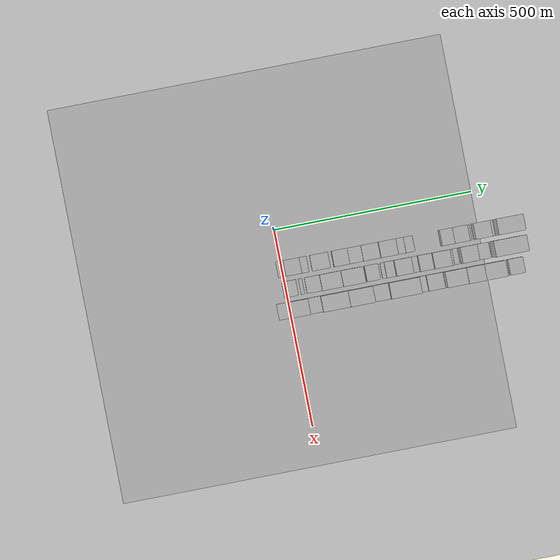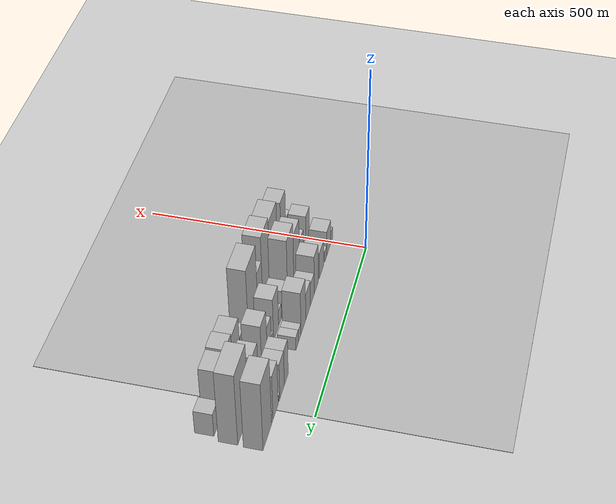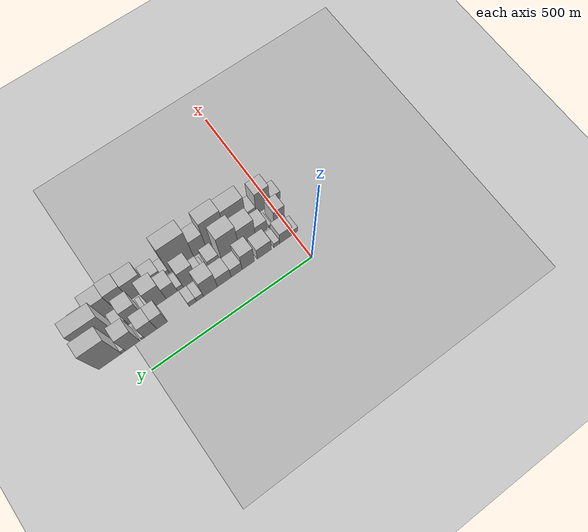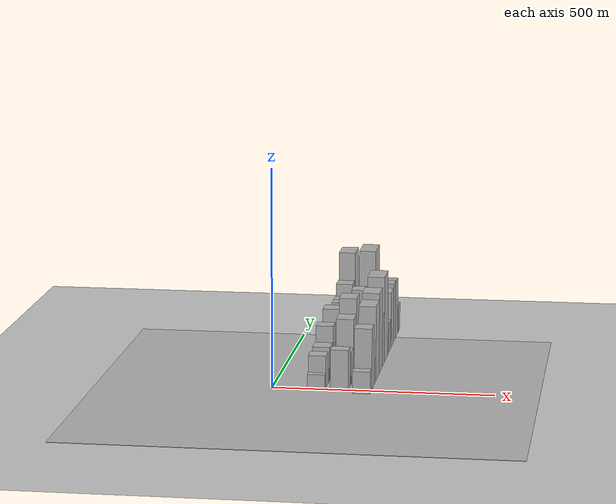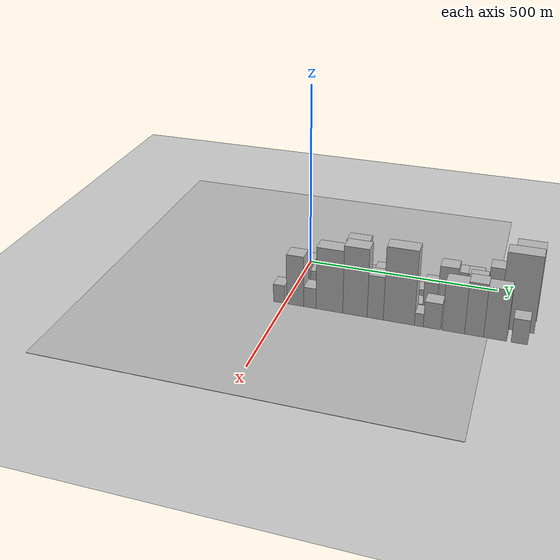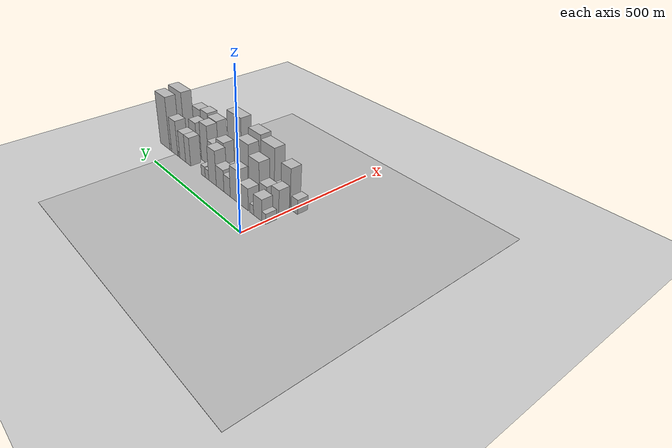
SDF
<sdf version="1.6">
 <world name="default">
  <include><name>ground_plane_1</name><uri>model://HANNAS_ground_plane</uri></include>
  <include>
   <name>ground_plane_2</name>
   <uri>model://HANNAS_ground_plane</uri>
   <pose>100 0 0  0 0 0</pose>
  </include>
  <model name="building_15">
   <static>1</static>
   <pose>100.0000 -2.6268 0 0.000000 0.000000 0.000000</pose>
   <link name="link">
    <pose>0 0 18.00 0 0 0</pose>
    <collision name="collision"><geometry><box><size>40.0000 19.1836 36.0000</size></box></geometry></collision>
    <visual name="visual">
     <cast_shadows>0</cast_shadows>
     <geometry><box><size>40.0000 19.1836 36.0000</size></box></geometry>
     <material>
      <script>
       <uri>model://HANNAS_wall/materials/scripts</uri>
       <uri>model://HANNAS_wall/materials/textures</uri>
       <name>vrc/HANNAS_wall</name>
      </script>
     </material>
    </visual>
   </link>
  </model>
  <model name="building_16">
   <static>1</static>
   <pose>100.0000 27.1155 0 0.000000 0.000000 0.000000</pose>
   <link name="link">
    <pose>0 0 37.50 0 0 0</pose>
    <collision name="collision"><geometry><box><size>40.0000 40.3009 75.0000</size></box></geometry></collision>
    <visual name="visual">
     <cast_shadows>0</cast_shadows>
     <geometry><box><size>40.0000 40.3009 75.0000</size></box></geometry>
     <material>
      <script>
       <uri>model://HANNAS_wall/materials/scripts</uri>
       <uri>model://HANNAS_wall/materials/textures</uri>
       <name>vrc/HANNAS_wall</name>
      </script>
     </material>
    </visual>
   </link>
  </model>
  <model name="building_17">
   <static>1</static>
   <pose>100.0000 56.4438 0 0.000000 0.000000 0.000000</pose>
   <link name="link">
    <pose>0 0 16.50 0 0 0</pose>
    <collision name="collision"><geometry><box><size>40.0000 18.3558 33.0000</size></box></geometry></collision>
    <visual name="visual">
     <cast_shadows>0</cast_shadows>
     <geometry><box><size>40.0000 18.3558 33.0000</size></box></geometry>
     <material>
      <script>
       <uri>model://HANNAS_wall/materials/scripts</uri>
       <uri>model://HANNAS_wall/materials/textures</uri>
       <name>vrc/HANNAS_wall</name>
      </script>
     </material>
    </visual>
   </link>
  </model>
  <model name="building_18">
   <static>1</static>
   <pose>100.0000 96.5650 0 0.000000 0.000000 0.000000</pose>
   <link name="link">
    <pose>0 0 39.00 0 0 0</pose>
    <collision name="collision"><geometry><box><size>40.0000 45.8865 78.0000</size></box></geometry></collision>
    <visual name="visual">
     <cast_shadows>0</cast_shadows>
     <geometry><box><size>40.0000 45.8865 78.0000</size></box></geometry>
     <material>
      <script>
       <uri>model://HANNAS_wall/materials/scripts</uri>
       <uri>model://HANNAS_wall/materials/textures</uri>
       <name>vrc/HANNAS_wall</name>
      </script>
     </material>
    </visual>
   </link>
  </model>
  <model name="building_19">
   <static>1</static>
   <pose>100.0000 148.1365 0 0.000000 0.000000 0.000000</pose>
   <link name="link">
    <pose>0 0 57.00 0 0 0</pose>
    <collision name="collision"><geometry><box><size>40.0000 39.2566 114.0000</size></box></geometry></collision>
    <visual name="visual">
     <cast_shadows>0</cast_shadows>
     <geometry><box><size>40.0000 39.2566 114.0000</size></box></geometry>
     <material>
      <script>
       <uri>model://HANNAS_wall/materials/scripts</uri>
       <uri>model://HANNAS_wall/materials/textures</uri>
       <name>vrc/HANNAS_wall</name>
      </script>
     </material>
    </visual>
   </link>
  </model>
  <model name="building_20">
   <static>1</static>
   <pose>100.0000 185.2685 0 0.000000 0.000000 0.000000</pose>
   <link name="link">
    <pose>0 0 33.00 0 0 0</pose>
    <collision name="collision"><geometry><box><size>40.0000 35.0073 66.0000</size></box></geometry></collision>
    <visual name="visual">
     <cast_shadows>0</cast_shadows>
     <geometry><box><size>40.0000 35.0073 66.0000</size></box></geometry>
     <material>
      <script>
       <uri>model://HANNAS_wall/materials/scripts</uri>
       <uri>model://HANNAS_wall/materials/textures</uri>
       <name>vrc/HANNAS_wall</name>
      </script>
     </material>
    </visual>
   </link>
  </model>
  <model name="building_21">
   <static>1</static>
   <pose>100.0000 224.4527 0 0.000000 0.000000 0.000000</pose>
   <link name="link">
    <pose>0 0 39.00 0 0 0</pose>
    <collision name="collision"><geometry><box><size>40.0000 43.3611 78.0000</size></box></geometry></collision>
    <visual name="visual">
     <cast_shadows>0</cast_shadows>
     <geometry><box><size>40.0000 43.3611 78.0000</size></box></geometry>
     <material>
      <script>
       <uri>model://HANNAS_wall/materials/scripts</uri>
       <uri>model://HANNAS_wall/materials/textures</uri>
       <name>vrc/HANNAS_wall</name>
      </script>
     </material>
    </visual>
   </link>
  </model>
  <model name="building_22">
   <static>1</static>
   <pose>100.0000 267.9557 0 0.000000 0.000000 0.000000</pose>
   <link name="link">
    <pose>0 0 63.00 0 0 0</pose>
    <collision name="collision"><geometry><box><size>40.0000 43.6451 126.0000</size></box></geometry></collision>
    <visual name="visual">
     <cast_shadows>0</cast_shadows>
     <geometry><box><size>40.0000 43.6451 126.0000</size></box></geometry>
     <material>
      <script>
       <uri>model://HANNAS_wall/materials/scripts</uri>
       <uri>model://HANNAS_wall/materials/textures</uri>
       <name>vrc/HANNAS_wall</name>
      </script>
     </material>
    </visual>
   </link>
  </model>
  <model name="building_23">
   <static>1</static>
   <pose>100.0000 300.5000 0 0.000000 0.000000 0.000000</pose>
   <link name="link">
    <pose>0 0 18.00 0 0 0</pose>
    <collision name="collision"><geometry><box><size>40.0000 21.4434 36.0000</size></box></geometry></collision>
    <visual name="visual">
     <cast_shadows>0</cast_shadows>
     <geometry><box><size>40.0000 21.4434 36.0000</size></box></geometry>
     <material>
      <script>
       <uri>model://HANNAS_wall/materials/scripts</uri>
       <uri>model://HANNAS_wall/materials/textures</uri>
       <name>vrc/HANNAS_wall</name>
      </script>
     </material>
    </visual>
   </link>
  </model>
  <model name="building_24">
   <static>1</static>
   <pose>100.0000 322.6901 0 0.000000 0.000000 0.000000</pose>
   <link name="link">
    <pose>0 0 19.50 0 0 0</pose>
    <collision name="collision"><geometry><box><size>40.0000 22.9368 39.0000</size></box></geometry></collision>
    <visual name="visual">
     <cast_shadows>0</cast_shadows>
     <geometry><box><size>40.0000 22.9368 39.0000</size></box></geometry>
     <material>
      <script>
       <uri>model://HANNAS_wall/materials/scripts</uri>
       <uri>model://HANNAS_wall/materials/textures</uri>
       <name>vrc/HANNAS_wall</name>
      </script>
     </material>
    </visual>
   </link>
  </model>
  <model name="building_25">
   <static>1</static>
   <pose>100.0000 416.6249 0 0.000000 0.000000 0.000000</pose>
   <link name="link">
    <pose>0 0 52.50 0 0 0</pose>
    <collision name="collision"><geometry><box><size>40.0000 32.3110 105.0000</size></box></geometry></collision>
    <visual name="visual">
     <cast_shadows>0</cast_shadows>
     <geometry><box><size>40.0000 32.3110 105.0000</size></box></geometry>
     <material>
      <script>
       <uri>model://HANNAS_wall/materials/scripts</uri>
       <uri>model://HANNAS_wall/materials/textures</uri>
       <name>vrc/HANNAS_wall</name>
      </script>
     </material>
    </visual>
   </link>
  </model>
  <model name="building_26">
   <static>1</static>
   <pose>100.0000 451.7565 0 0.000000 0.000000 0.000000</pose>
   <link name="link">
    <pose>0 0 52.50 0 0 0</pose>
    <collision name="collision"><geometry><box><size>40.0000 37.9522 105.0000</size></box></geometry></collision>
    <visual name="visual">
     <cast_shadows>0</cast_shadows>
     <geometry><box><size>40.0000 37.9522 105.0000</size></box></geometry>
     <material>
      <script>
       <uri>model://HANNAS_wall/materials/scripts</uri>
       <uri>model://HANNAS_wall/materials/textures</uri>
       <name>vrc/HANNAS_wall</name>
      </script>
     </material>
    </visual>
   </link>
  </model>
  <model name="building_27">
   <static>1</static>
   <pose>100.0000 474.9390 0 0.000000 0.000000 0.000000</pose>
   <link name="link">
    <pose>0 0 10.50 0 0 0</pose>
    <collision name="collision"><geometry><box><size>40.0000 8.4129 21.0000</size></box></geometry></collision>
    <visual name="visual">
     <cast_shadows>0</cast_shadows>
     <geometry><box><size>40.0000 8.4129 21.0000</size></box></geometry>
     <material>
      <script>
       <uri>model://HANNAS_wall/materials/scripts</uri>
       <uri>model://HANNAS_wall/materials/textures</uri>
       <name>vrc/HANNAS_wall</name>
      </script>
     </material>
    </visual>
   </link>
  </model>
  <model name="building_28">
   <static>1</static>
   <pose>100.0000 505.3186 0 0.000000 0.000000 0.000000</pose>
   <link name="link">
    <pose>0 0 66.00 0 0 0</pose>
    <collision name="collision"><geometry><box><size>40.0000 42.3463 132.0000</size></box></geometry></collision>
    <visual name="visual">
     <cast_shadows>0</cast_shadows>
     <geometry><box><size>40.0000 42.3463 132.0000</size></box></geometry>
     <material>
      <script>
       <uri>model://HANNAS_wall/materials/scripts</uri>
       <uri>model://HANNAS_wall/materials/textures</uri>
       <name>vrc/HANNAS_wall</name>
      </script>
     </material>
    </visual>
   </link>
  </model>
  <model name="building_29">
   <static>1</static>
   <pose>100.0000 532.2817 0 0.000000 0.000000 0.000000</pose>
   <link name="link">
    <pose>0 0 13.50 0 0 0</pose>
    <collision name="collision"><geometry><box><size>40.0000 11.5799 27.0000</size></box></geometry></collision>
    <visual name="visual">
     <cast_shadows>0</cast_shadows>
     <geometry><box><size>40.0000 11.5799 27.0000</size></box></geometry>
     <material>
      <script>
       <uri>model://HANNAS_wall/materials/scripts</uri>
       <uri>model://HANNAS_wall/materials/textures</uri>
       <name>vrc/HANNAS_wall</name>
      </script>
     </material>
    </visual>
   </link>
  </model>
  <model name="building_30">
   <static>1</static>
   <pose>100.0000 571.8562 0 0.000000 0.000000 0.000000</pose>
   <link name="link">
    <pose>0 0 99.00 0 0 0</pose>
    <collision name="collision"><geometry><box><size>40.0000 67.5692 198.0000</size></box></geometry></collision>
    <visual name="visual">
     <cast_shadows>0</cast_shadows>
     <geometry><box><size>40.0000 67.5692 198.0000</size></box></geometry>
     <material>
      <script>
       <uri>model://HANNAS_wall/materials/scripts</uri>
       <uri>model://HANNAS_wall/materials/textures</uri>
       <name>vrc/HANNAS_wall</name>
      </script>
     </material>
    </visual>
   </link>
  </model>
  <model name="building_45">
   <static>1</static>
   <pose>152.0000 10.8522 0 0.000000 0.000000 0.000000</pose>
   <link name="link">
    <pose>0 0 46.50 0 0 0</pose>
    <collision name="collision"><geometry><box><size>40.0000 35.3504 93.0000</size></box></geometry></collision>
    <visual name="visual">
     <cast_shadows>0</cast_shadows>
     <geometry><box><size>40.0000 35.3504 93.0000</size></box></geometry>
     <material>
      <script>
       <uri>model://HANNAS_wall/materials/scripts</uri>
       <uri>model://HANNAS_wall/materials/textures</uri>
       <name>vrc/HANNAS_wall</name>
      </script>
     </material>
    </visual>
   </link>
  </model>
  <model name="building_46">
   <static>1</static>
   <pose>152.0000 39.9462 0 0.000000 0.000000 0.000000</pose>
   <link name="link">
    <pose>0 0 10.50 0 0 0</pose>
    <collision name="collision"><geometry><box><size>40.0000 8.8375 21.0000</size></box></geometry></collision>
    <visual name="visual">
     <cast_shadows>0</cast_shadows>
     <geometry><box><size>40.0000 8.8375 21.0000</size></box></geometry>
     <material>
      <script>
       <uri>model://HANNAS_wall/materials/scripts</uri>
       <uri>model://HANNAS_wall/materials/textures</uri>
       <name>vrc/HANNAS_wall</name>
      </script>
     </material>
    </visual>
   </link>
  </model>
  <model name="building_47">
   <static>1</static>
   <pose>152.0000 69.3431 0 0.000000 0.000000 0.000000</pose>
   <link name="link">
    <pose>0 0 37.50 0 0 0</pose>
    <collision name="collision"><geometry><box><size>40.0000 37.9565 75.0000</size></box></geometry></collision>
    <visual name="visual">
     <cast_shadows>0</cast_shadows>
     <geometry><box><size>40.0000 37.9565 75.0000</size></box></geometry>
     <material>
      <script>
       <uri>model://HANNAS_wall/materials/scripts</uri>
       <uri>model://HANNAS_wall/materials/textures</uri>
       <name>vrc/HANNAS_wall</name>
      </script>
     </material>
    </visual>
   </link>
  </model>
  <model name="building_48">
   <static>1</static>
   <pose>152.0000 114.7012 0 0.000000 0.000000 0.000000</pose>
   <link name="link">
    <pose>0 0 70.50 0 0 0</pose>
    <collision name="collision"><geometry><box><size>40.0000 52.7597 141.0000</size></box></geometry></collision>
    <visual name="visual">
     <cast_shadows>0</cast_shadows>
     <geometry><box><size>40.0000 52.7597 141.0000</size></box></geometry>
     <material>
      <script>
       <uri>model://HANNAS_wall/materials/scripts</uri>
       <uri>model://HANNAS_wall/materials/textures</uri>
       <name>vrc/HANNAS_wall</name>
      </script>
     </material>
    </visual>
   </link>
  </model>
  <model name="building_49">
   <static>1</static>
   <pose>152.0000 169.1340 0 0.000000 0.000000 0.000000</pose>
   <link name="link">
    <pose>0 0 88.50 0 0 0</pose>
    <collision name="collision"><geometry><box><size>40.0000 56.1060 177.0000</size></box></geometry></collision>
    <visual name="visual">
     <cast_shadows>0</cast_shadows>
     <geometry><box><size>40.0000 56.1060 177.0000</size></box></geometry>
     <material>
      <script>
       <uri>model://HANNAS_wall/materials/scripts</uri>
       <uri>model://HANNAS_wall/materials/textures</uri>
       <name>vrc/HANNAS_wall</name>
      </script>
     </material>
    </visual>
   </link>
  </model>
  <model name="building_50">
   <static>1</static>
   <pose>152.0000 219.3426 0 0.000000 0.000000 0.000000</pose>
   <link name="link">
    <pose>0 0 33.00 0 0 0</pose>
    <collision name="collision"><geometry><box><size>40.0000 34.3112 66.0000</size></box></geometry></collision>
    <visual name="visual">
     <cast_shadows>0</cast_shadows>
     <geometry><box><size>40.0000 34.3112 66.0000</size></box></geometry>
     <material>
      <script>
       <uri>model://HANNAS_wall/materials/scripts</uri>
       <uri>model://HANNAS_wall/materials/textures</uri>
       <name>vrc/HANNAS_wall</name>
      </script>
     </material>
    </visual>
   </link>
  </model>
  <model name="building_51">
   <static>1</static>
   <pose>152.0000 247.5086 0 0.000000 0.000000 0.000000</pose>
   <link name="link">
    <pose>0 0 10.50 0 0 0</pose>
    <collision name="collision"><geometry><box><size>40.0000 10.0208 21.0000</size></box></geometry></collision>
    <visual name="visual">
     <cast_shadows>0</cast_shadows>
     <geometry><box><size>40.0000 10.0208 21.0000</size></box></geometry>
     <material>
      <script>
       <uri>model://HANNAS_wall/materials/scripts</uri>
       <uri>model://HANNAS_wall/materials/textures</uri>
       <name>vrc/HANNAS_wall</name>
      </script>
     </material>
    </visual>
   </link>
  </model>
  <model name="building_52">
   <static>1</static>
   <pose>152.0000 264.1596 0 0.000000 0.000000 0.000000</pose>
   <link name="link">
    <pose>0 0 22.50 0 0 0</pose>
    <collision name="collision"><geometry><box><size>40.0000 23.2811 45.0000</size></box></geometry></collision>
    <visual name="visual">
     <cast_shadows>0</cast_shadows>
     <geometry><box><size>40.0000 23.2811 45.0000</size></box></geometry>
     <material>
      <script>
       <uri>model://HANNAS_wall/materials/scripts</uri>
       <uri>model://HANNAS_wall/materials/textures</uri>
       <name>vrc/HANNAS_wall</name>
      </script>
     </material>
    </visual>
   </link>
  </model>
  <model name="building_53">
   <static>1</static>
   <pose>152.0000 297.2393 0 0.000000 0.000000 0.000000</pose>
   <link name="link">
    <pose>0 0 61.50 0 0 0</pose>
    <collision name="collision"><geometry><box><size>40.0000 42.8782 123.0000</size></box></geometry></collision>
    <visual name="visual">
     <cast_shadows>0</cast_shadows>
     <geometry><box><size>40.0000 42.8782 123.0000</size></box></geometry>
     <material>
      <script>
       <uri>model://HANNAS_wall/materials/scripts</uri>
       <uri>model://HANNAS_wall/materials/textures</uri>
       <name>vrc/HANNAS_wall</name>
      </script>
     </material>
    </visual>
   </link>
  </model>
  <model name="building_54">
   <static>1</static>
   <pose>152.0000 327.4749 0 0.000000 0.000000 0.000000</pose>
   <link name="link">
    <pose>0 0 15.00 0 0 0</pose>
    <collision name="collision"><geometry><box><size>40.0000 17.5930 30.0000</size></box></geometry></collision>
    <visual name="visual">
     <cast_shadows>0</cast_shadows>
     <geometry><box><size>40.0000 17.5930 30.0000</size></box></geometry>
     <material>
      <script>
       <uri>model://HANNAS_wall/materials/scripts</uri>
       <uri>model://HANNAS_wall/materials/textures</uri>
       <name>vrc/HANNAS_wall</name>
      </script>
     </material>
    </visual>
   </link>
  </model>
  <model name="building_55">
   <static>1</static>
   <pose>152.0000 353.6401 0 0.000000 0.000000 0.000000</pose>
   <link name="link">
    <pose>0 0 46.50 0 0 0</pose>
    <collision name="collision"><geometry><box><size>40.0000 34.7374 93.0000</size></box></geometry></collision>
    <visual name="visual">
     <cast_shadows>0</cast_shadows>
     <geometry><box><size>40.0000 34.7374 93.0000</size></box></geometry>
     <material>
      <script>
       <uri>model://HANNAS_wall/materials/scripts</uri>
       <uri>model://HANNAS_wall/materials/textures</uri>
       <name>vrc/HANNAS_wall</name>
      </script>
     </material>
    </visual>
   </link>
  </model>
  <model name="building_56">
   <static>1</static>
   <pose>152.0000 393.0776 0 0.000000 0.000000 0.000000</pose>
   <link name="link">
    <pose>0 0 72.00 0 0 0</pose>
    <collision name="collision"><geometry><box><size>40.0000 44.1377 144.0000</size></box></geometry></collision>
    <visual name="visual">
     <cast_shadows>0</cast_shadows>
     <geometry><box><size>40.0000 44.1377 144.0000</size></box></geometry>
     <material>
      <script>
       <uri>model://HANNAS_wall/materials/scripts</uri>
       <uri>model://HANNAS_wall/materials/textures</uri>
       <name>vrc/HANNAS_wall</name>
      </script>
     </material>
    </visual>
   </link>
  </model>
  <model name="building_57">
   <static>1</static>
   <pose>152.0000 420.0648 0 0.000000 0.000000 0.000000</pose>
   <link name="link">
    <pose>0 0 12.00 0 0 0</pose>
    <collision name="collision"><geometry><box><size>40.0000 9.8367 24.0000</size></box></geometry></collision>
    <visual name="visual">
     <cast_shadows>0</cast_shadows>
     <geometry><box><size>40.0000 9.8367 24.0000</size></box></geometry>
     <material>
      <script>
       <uri>model://HANNAS_wall/materials/scripts</uri>
       <uri>model://HANNAS_wall/materials/textures</uri>
       <name>vrc/HANNAS_wall</name>
      </script>
     </material>
    </visual>
   </link>
  </model>
  <model name="building_58">
   <static>1</static>
   <pose>152.0000 431.3381 0 0.000000 0.000000 0.000000</pose>
   <link name="link">
    <pose>0 0 13.50 0 0 0</pose>
    <collision name="collision"><geometry><box><size>40.0000 12.7099 27.0000</size></box></geometry></collision>
    <visual name="visual">
     <cast_shadows>0</cast_shadows>
     <geometry><box><size>40.0000 12.7099 27.0000</size></box></geometry>
     <material>
      <script>
       <uri>model://HANNAS_wall/materials/scripts</uri>
       <uri>model://HANNAS_wall/materials/textures</uri>
       <name>vrc/HANNAS_wall</name>
      </script>
     </material>
    </visual>
   </link>
  </model>
  <model name="building_59">
   <static>1</static>
   <pose>152.0000 462.9212 0 0.000000 0.000000 0.000000</pose>
   <link name="link">
    <pose>0 0 63.00 0 0 0</pose>
    <collision name="collision"><geometry><box><size>40.0000 42.4564 126.0000</size></box></geometry></collision>
    <visual name="visual">
     <cast_shadows>0</cast_shadows>
     <geometry><box><size>40.0000 42.4564 126.0000</size></box></geometry>
     <material>
      <script>
       <uri>model://HANNAS_wall/materials/scripts</uri>
       <uri>model://HANNAS_wall/materials/textures</uri>
       <name>vrc/HANNAS_wall</name>
      </script>
     </material>
    </visual>
   </link>
  </model>
  <model name="building_60">
   <static>1</static>
   <pose>152.0000 500.0744 0 0.000000 0.000000 0.000000</pose>
   <link name="link">
    <pose>0 0 27.00 0 0 0</pose>
    <collision name="collision"><geometry><box><size>40.0000 31.8500 54.0000</size></box></geometry></collision>
    <visual name="visual">
     <cast_shadows>0</cast_shadows>
     <geometry><box><size>40.0000 31.8500 54.0000</size></box></geometry>
     <material>
      <script>
       <uri>model://HANNAS_wall/materials/scripts</uri>
       <uri>model://HANNAS_wall/materials/textures</uri>
       <name>vrc/HANNAS_wall</name>
      </script>
     </material>
    </visual>
   </link>
  </model>
  <model name="building_61">
   <static>1</static>
   <pose>152.0000 562.2722 0 0.000000 0.000000 0.000000</pose>
   <link name="link">
    <pose>0 0 103.50 0 0 0</pose>
    <collision name="collision"><geometry><box><size>40.0000 82.5456 207.0000</size></box></geometry></collision>
    <visual name="visual">
     <cast_shadows>0</cast_shadows>
     <geometry><box><size>40.0000 82.5456 207.0000</size></box></geometry>
     <material>
      <script>
       <uri>model://HANNAS_wall/materials/scripts</uri>
       <uri>model://HANNAS_wall/materials/textures</uri>
       <name>vrc/HANNAS_wall</name>
      </script>
     </material>
    </visual>
   </link>
  </model>
  <model name="building_80">
   <static>1</static>
   <pose>204.0000 -15.4704 0 0.000000 0.000000 0.000000</pose>
   <link name="link">
    <pose>0 0 25.50 0 0 0</pose>
    <collision name="collision"><geometry><box><size>40.0000 29.5508 51.0000</size></box></geometry></collision>
    <visual name="visual">
     <cast_shadows>0</cast_shadows>
     <geometry><box><size>40.0000 29.5508 51.0000</size></box></geometry>
     <material>
      <script>
       <uri>model://HANNAS_wall/materials/scripts</uri>
       <uri>model://HANNAS_wall/materials/textures</uri>
       <name>vrc/HANNAS_wall</name>
      </script>
     </material>
    </visual>
   </link>
  </model>
  <model name="building_81">
   <static>1</static>
   <pose>204.0000 26.6767 0 0.000000 0.000000 0.000000</pose>
   <link name="link">
    <pose>0 0 70.50 0 0 0</pose>
    <collision name="collision"><geometry><box><size>40.0000 44.7435 141.0000</size></box></geometry></collision>
    <visual name="visual">
     <cast_shadows>0</cast_shadows>
     <geometry><box><size>40.0000 44.7435 141.0000</size></box></geometry>
     <material>
      <script>
       <uri>model://HANNAS_wall/materials/scripts</uri>
       <uri>model://HANNAS_wall/materials/textures</uri>
       <name>vrc/HANNAS_wall</name>
      </script>
     </material>
    </visual>
   </link>
  </model>
  <model name="building_82">
   <static>1</static>
   <pose>204.0000 64.9912 0 0.000000 0.000000 0.000000</pose>
   <link name="link">
    <pose>0 0 28.50 0 0 0</pose>
    <collision name="collision"><geometry><box><size>40.0000 31.8854 57.0000</size></box></geometry></collision>
    <visual name="visual">
     <cast_shadows>0</cast_shadows>
     <geometry><box><size>40.0000 31.8854 57.0000</size></box></geometry>
     <material>
      <script>
       <uri>model://HANNAS_wall/materials/scripts</uri>
       <uri>model://HANNAS_wall/materials/textures</uri>
       <name>vrc/HANNAS_wall</name>
      </script>
     </material>
    </visual>
   </link>
  </model>
  <model name="building_83">
   <static>1</static>
   <pose>204.0000 115.0102 0 0.000000 0.000000 0.000000</pose>
   <link name="link">
    <pose>0 0 87.00 0 0 0</pose>
    <collision name="collision"><geometry><box><size>40.0000 68.1527 174.0000</size></box></geometry></collision>
    <visual name="visual">
     <cast_shadows>0</cast_shadows>
     <geometry><box><size>40.0000 68.1527 174.0000</size></box></geometry>
     <material>
      <script>
       <uri>model://HANNAS_wall/materials/scripts</uri>
       <uri>model://HANNAS_wall/materials/textures</uri>
       <name>vrc/HANNAS_wall</name>
      </script>
     </material>
    </visual>
   </link>
  </model>
  <model name="building_84">
   <static>1</static>
   <pose>204.0000 179.8777 0 0.000000 0.000000 0.000000</pose>
   <link name="link">
    <pose>0 0 94.50 0 0 0</pose>
    <collision name="collision"><geometry><box><size>40.0000 61.5822 189.0000</size></box></geometry></collision>
    <visual name="visual">
     <cast_shadows>0</cast_shadows>
     <geometry><box><size>40.0000 61.5822 189.0000</size></box></geometry>
     <material>
      <script>
       <uri>model://HANNAS_wall/materials/scripts</uri>
       <uri>model://HANNAS_wall/materials/textures</uri>
       <name>vrc/HANNAS_wall</name>
      </script>
     </material>
    </visual>
   </link>
  </model>
  <model name="building_85">
   <static>1</static>
   <pose>204.0000 230.6849 0 0.000000 0.000000 0.000000</pose>
   <link name="link">
    <pose>0 0 60.00 0 0 0</pose>
    <collision name="collision"><geometry><box><size>40.0000 40.0322 120.0000</size></box></geometry></collision>
    <visual name="visual">
     <cast_shadows>0</cast_shadows>
     <geometry><box><size>40.0000 40.0322 120.0000</size></box></geometry>
     <material>
      <script>
       <uri>model://HANNAS_wall/materials/scripts</uri>
       <uri>model://HANNAS_wall/materials/textures</uri>
       <name>vrc/HANNAS_wall</name>
      </script>
     </material>
    </visual>
   </link>
  </model>
  <model name="building_86">
   <static>1</static>
   <pose>204.0000 288.8746 0 0.000000 0.000000 0.000000</pose>
   <link name="link">
    <pose>0 0 102.00 0 0 0</pose>
    <collision name="collision"><geometry><box><size>40.0000 76.3472 204.0000</size></box></geometry></collision>
    <visual name="visual">
     <cast_shadows>0</cast_shadows>
     <geometry><box><size>40.0000 76.3472 204.0000</size></box></geometry>
     <material>
      <script>
       <uri>model://HANNAS_wall/materials/scripts</uri>
       <uri>model://HANNAS_wall/materials/textures</uri>
       <name>vrc/HANNAS_wall</name>
      </script>
     </material>
    </visual>
   </link>
  </model>
  <model name="building_87">
   <static>1</static>
   <pose>204.0000 337.6595 0 0.000000 0.000000 0.000000</pose>
   <link name="link">
    <pose>0 0 18.00 0 0 0</pose>
    <collision name="collision"><geometry><box><size>40.0000 21.2227 36.0000</size></box></geometry></collision>
    <visual name="visual">
     <cast_shadows>0</cast_shadows>
     <geometry><box><size>40.0000 21.2227 36.0000</size></box></geometry>
     <material>
      <script>
       <uri>model://HANNAS_wall/materials/scripts</uri>
       <uri>model://HANNAS_wall/materials/textures</uri>
       <name>vrc/HANNAS_wall</name>
      </script>
     </material>
    </visual>
   </link>
  </model>
  <model name="building_88">
   <static>1</static>
   <pose>204.0000 369.2489 0 0.000000 0.000000 0.000000</pose>
   <link name="link">
    <pose>0 0 36.00 0 0 0</pose>
    <collision name="collision"><geometry><box><size>40.0000 41.9561 72.0000</size></box></geometry></collision>
    <visual name="visual">
     <cast_shadows>0</cast_shadows>
     <geometry><box><size>40.0000 41.9561 72.0000</size></box></geometry>
     <material>
      <script>
       <uri>model://HANNAS_wall/materials/scripts</uri>
       <uri>model://HANNAS_wall/materials/textures</uri>
       <name>vrc/HANNAS_wall</name>
      </script>
     </material>
    </visual>
   </link>
  </model>
  <model name="building_89">
   <static>1</static>
   <pose>204.0000 420.0023 0 0.000000 0.000000 0.000000</pose>
   <link name="link">
    <pose>0 0 67.50 0 0 0</pose>
    <collision name="collision"><geometry><box><size>40.0000 53.5505 135.0000</size></box></geometry></collision>
    <visual name="visual">
     <cast_shadows>0</cast_shadows>
     <geometry><box><size>40.0000 53.5505 135.0000</size></box></geometry>
     <material>
      <script>
       <uri>model://HANNAS_wall/materials/scripts</uri>
       <uri>model://HANNAS_wall/materials/textures</uri>
       <name>vrc/HANNAS_wall</name>
      </script>
     </material>
    </visual>
   </link>
  </model>
  <model name="building_90">
   <static>1</static>
   <pose>204.0000 469.0128 0 0.000000 0.000000 0.000000</pose>
   <link name="link">
    <pose>0 0 72.00 0 0 0</pose>
    <collision name="collision"><geometry><box><size>40.0000 44.4706 144.0000</size></box></geometry></collision>
    <visual name="visual">
     <cast_shadows>0</cast_shadows>
     <geometry><box><size>40.0000 44.4706 144.0000</size></box></geometry>
     <material>
      <script>
       <uri>model://HANNAS_wall/materials/scripts</uri>
       <uri>model://HANNAS_wall/materials/textures</uri>
       <name>vrc/HANNAS_wall</name>
      </script>
     </material>
    </visual>
   </link>
  </model>
  <model name="building_91">
   <static>1</static>
   <pose>204.0000 518.0035 0 0.000000 0.000000 0.000000</pose>
   <link name="link">
    <pose>0 0 69.00 0 0 0</pose>
    <collision name="collision"><geometry><box><size>40.0000 53.5108 138.0000</size></box></geometry></collision>
    <visual name="visual">
     <cast_shadows>0</cast_shadows>
     <geometry><box><size>40.0000 53.5108 138.0000</size></box></geometry>
     <material>
      <script>
       <uri>model://HANNAS_wall/materials/scripts</uri>
       <uri>model://HANNAS_wall/materials/textures</uri>
       <name>vrc/HANNAS_wall</name>
      </script>
     </material>
    </visual>
   </link>
  </model>
  <model name="building_92">
   <static>1</static>
   <pose>204.0000 573.6963 0 0.000000 0.000000 0.000000</pose>
   <link name="link">
    <pose>0 0 33.00 0 0 0</pose>
    <collision name="collision"><geometry><box><size>40.0000 37.8748 66.0000</size></box></geometry></collision>
    <visual name="visual">
     <cast_shadows>0</cast_shadows>
     <geometry><box><size>40.0000 37.8748 66.0000</size></box></geometry>
     <material>
      <script>
       <uri>model://HANNAS_wall/materials/scripts</uri>
       <uri>model://HANNAS_wall/materials/textures</uri>
       <name>vrc/HANNAS_wall</name>
      </script>
     </material>
    </visual>
   </link>
  </model>
 </world>
</sdf>
